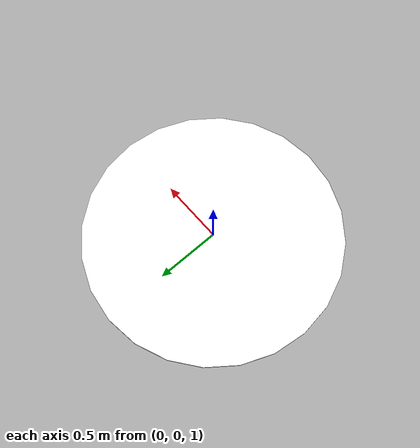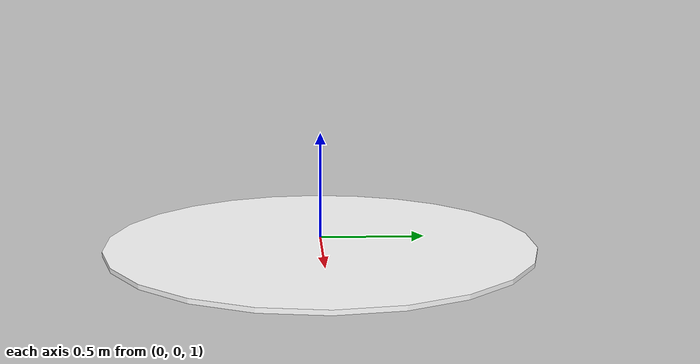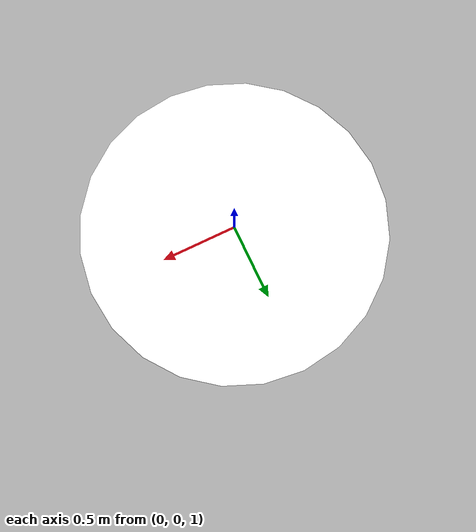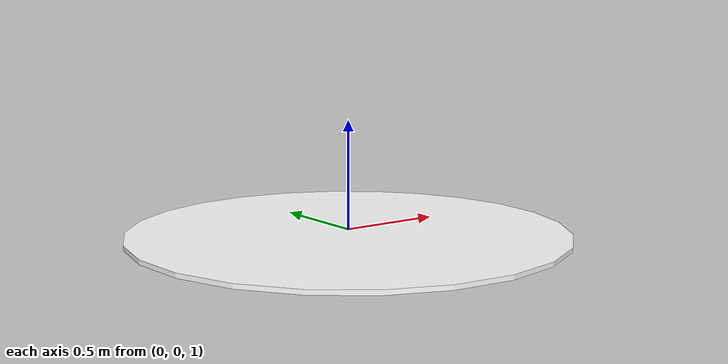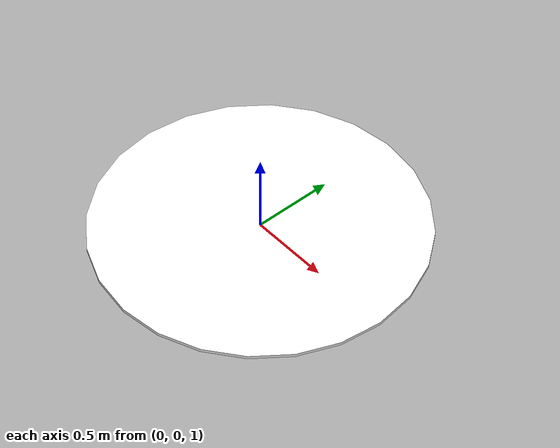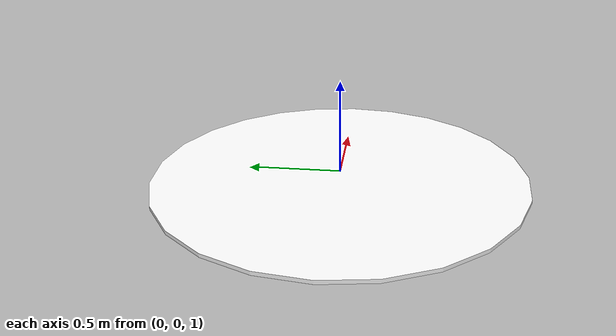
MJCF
<!-- core/LowLevel/Assets/skydio_X2/assets/Pad.xml -->
<mujoco model="Skydio X2">

  <asset>
    <texture name="donut_tex" type="2d" file="donut_with_marker.png"/>
    <material name="donut_material" texture="donut_tex" texrepeat="1 1" texuniform="true"/>
  </asset>

  <worldbody>
    <body name="Pad" pos="0 0 1">
      <joint name="Pad_joint_x" type="slide" axis="1 0 0" damping="5"/>
      <joint name="Pad_joint_y" type="slide" axis="0 1 0" damping="5"/>

      <geom name="donut_platform" type="cylinder" size="1.0 0.01"
            friction="3.0 2.0 0.1"
            margin="0.01"
            condim="6"
            solref="0.002 1.0"
            solimp="0.90 0.95 0.002"
            material="donut_material" rgba="1 1 1 1"/>

      <site name="Pad_site_gps" pos="0 0 0.03" size="0.002"/>
      <site name="Pad_site_touch" pos="0 0 0.011" size="0.005"/>
    </body>
  </worldbody>

  <sensor>
    <framepos name="Pad_framepos" objtype="site" objname="Pad_site_gps"/>
    <velocimeter name="Pad_velocimeter" site="Pad_site_gps"/>
  </sensor>

  <sensor>
    <touch name="Pad_touch" site="Pad_site_touch"/>
  </sensor>

</mujoco>
